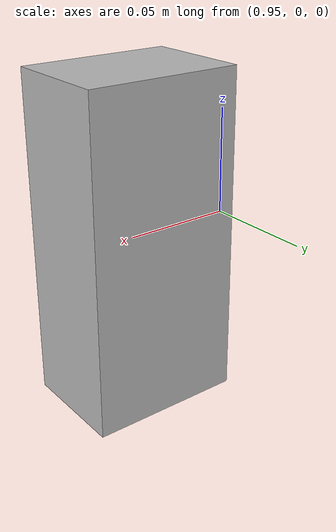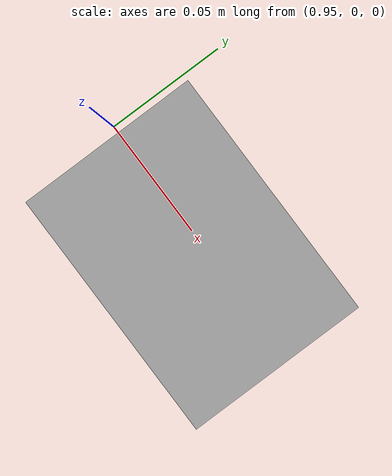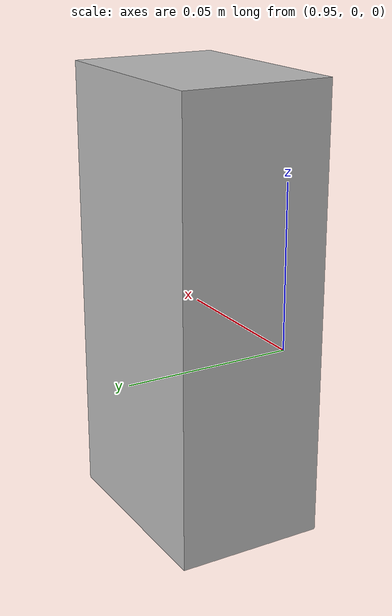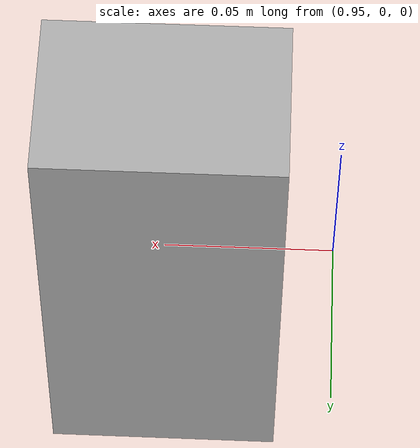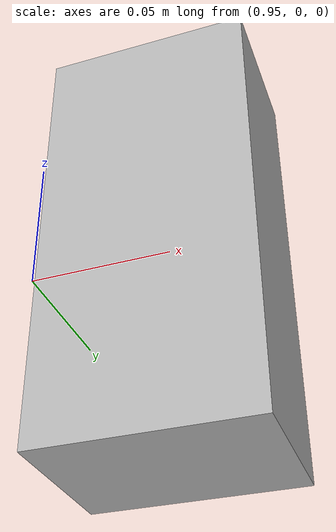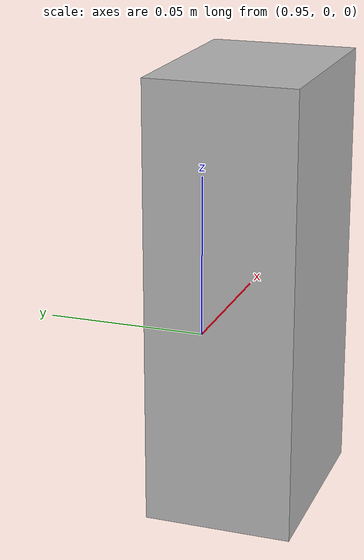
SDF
<?xml version="1.0" ?>
<sdf version="1.5">
  <model name="mpnet_box5">
    <pose frame="world">1 0 0.0 0 0 0</pose>
    <link name="mpnet_box5_link">
      <inertial>
        <mass>0.1</mass>
      </inertial>
      <visual name="mpnet_box5_visual">
        <geometry>
          <box>
            <size>0.07 0.05 0.15</size>
          </box>
        </geometry>
      </visual>

      <collision name="mpnet_box5_collision">
        <geometry>
          <box>
            <size>0.07 0.05 0.15</size>
          </box>
        </geometry>
      </collision>

    </link>
  </model>
</sdf>
